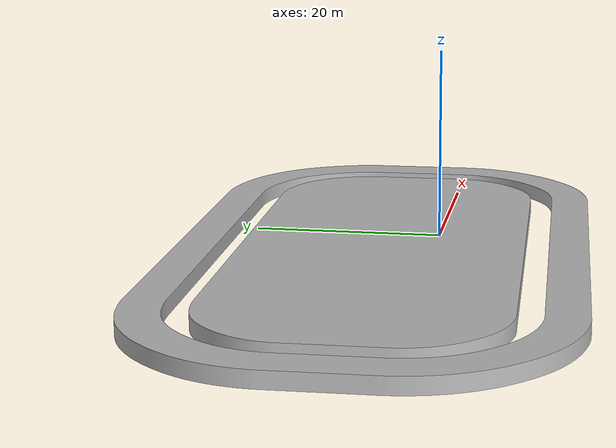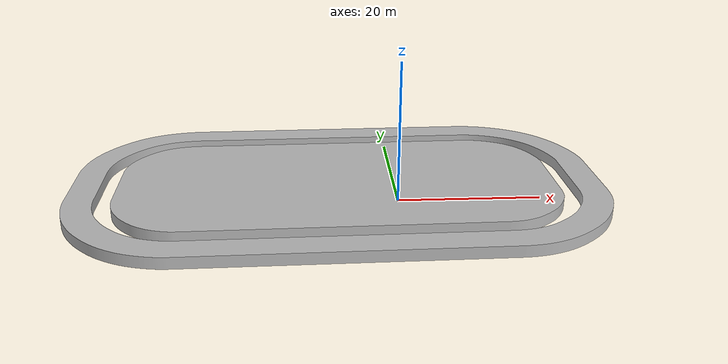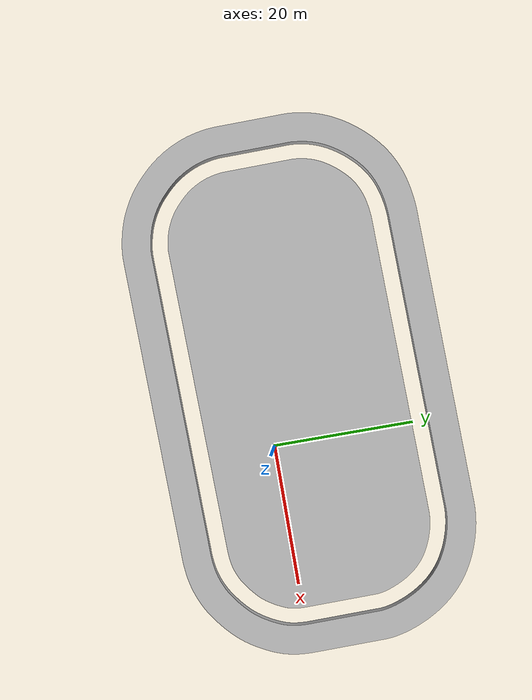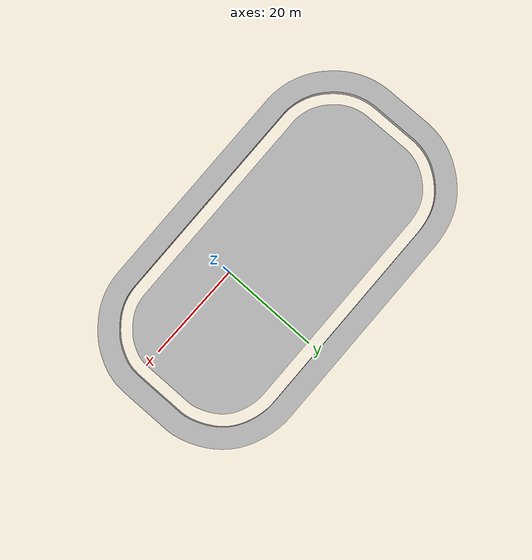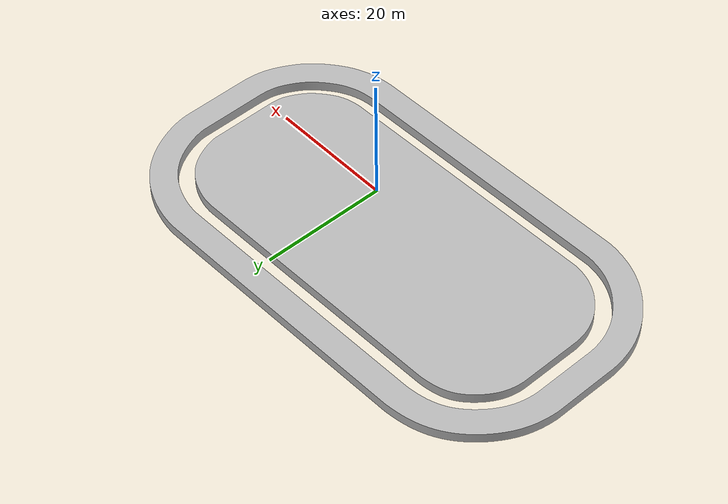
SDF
<?xml version='1.0'?>

<sdf version='1.4'>

  <model name="IMS_track">

    <link name="link">

      <collision name="collision">
        <geometry>
          <mesh>
            <uri>model://audubon-gazebo/world/IMS_track/IMS_track.stl</uri>
          </mesh>
        </geometry>
      </collision>

      <visual name="visual">
        <geometry>
          <mesh>
            <uri>model://audubon-gazebo/world/IMS_track/IMS_track.stl</uri>
          </mesh>
        </geometry>
      </visual>

    </link>

    <static>1</static>

  </model>

</sdf>
